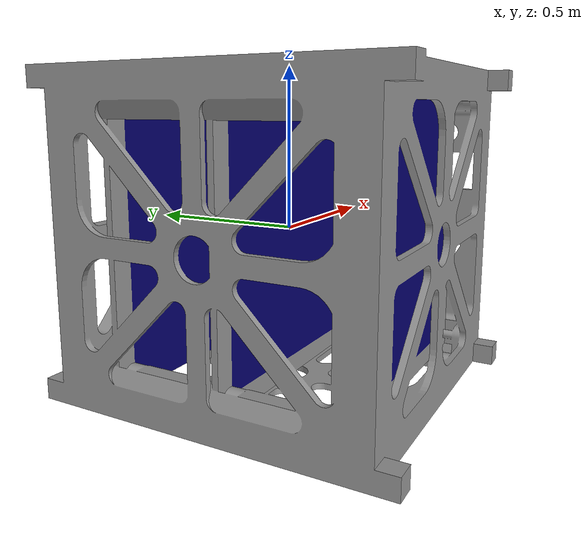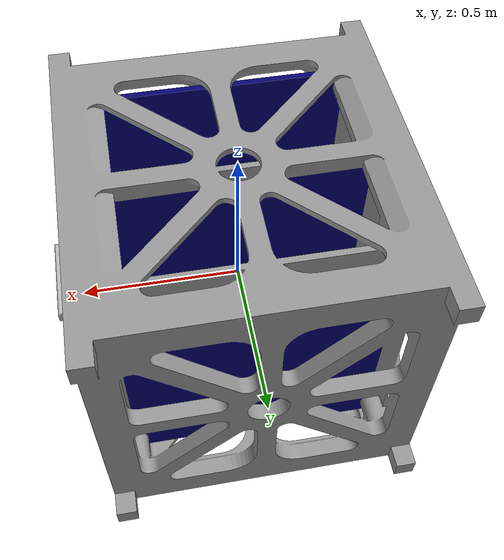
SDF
<?xml version="1.0" ?>
<sdf version="1.5">
  <model name="cubesat1">

    <link name="link">
      <visual name="visual">
        <geometry>
          <mesh>
            <uri>model://cubesat1/meshes/cubesat1.dae</uri>
          </mesh>
        </geometry>
       </visual>
    </link>

    <include>
      <uri>model://kinect_ros</uri>
      <name>kinect</name>
      <pose>0.57 0 0.08 0 0 0</pose>
    </include>

  <joint name="kinect_joint" type="fixed">
    <parent>link</parent>
    <child>kinect::link</child>
  </joint>

  </model>

</sdf>

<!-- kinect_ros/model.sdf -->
<sdf version="1.5">
  <model name="kinect_ros">
    <pose>0 0 0.036 0 0 0</pose>
    <link name="link">
      <inertial>
        <mass>0.1</mass>
      </inertial>
      <collision name="collision">
        <geometry>
          <box>
            <size>0.073000 0.276000 0.072000</size>
          </box>
        </geometry>
      </collision>
      <visual name="visual">
        <geometry>
          <mesh>
            <uri>model://kinect/meshes/kinect.dae</uri>
          </mesh>
        </geometry>
      </visual>
      <sensor name="camera" type="depth">
        <update_rate>20</update_rate>
        <camera>
          <horizontal_fov>1.047198</horizontal_fov>
          <image>
            <width>640</width>
            <height>480</height>
            <format>R8G8B8</format>
          </image>
          <clip>
            <near>0.05</near>
            <far>20</far>
          </clip>
        </camera>
        <plugin name="camera_plugin" filename="libgazebo_ros_openni_kinect.so">
          <baseline>0.2</baseline>
          <alwaysOn>true</alwaysOn>
          <updateRate>0.0</updateRate>
          <cameraName>camera_ir</cameraName>
          <imageTopicName>/camera/color/image_raw</imageTopicName>
          <cameraInfoTopicName>/camera/color/camera_info</cameraInfoTopicName>
          <depthImageTopicName>/camera/depth/image_raw</depthImageTopicName>
          <depthImageCameraInfoTopicName>/camera/depth/camera_info</depthImageCameraInfoTopicName>
          <pointCloudTopicName>/camera/depth/points</pointCloudTopicName>
          <frameName>camera_link</frameName>
          <pointCloudCutoff>0.5</pointCloudCutoff>
          <pointCloudCutoffMax>20.0</pointCloudCutoffMax>
          <distortionK1>0</distortionK1>
          <distortionK2>0</distortionK2>
          <distortionK3>0</distortionK3>
          <distortionT1>0</distortionT1>
          <distortionT2>0</distortionT2>
          <CxPrime>0</CxPrime>
          <Cx>0</Cx>
          <Cy>0</Cy>
          <focalLength>0</focalLength>
          <hackBaseline>0</hackBaseline>
        </plugin>
      </sensor>
    </link>
  </model>
</sdf>
